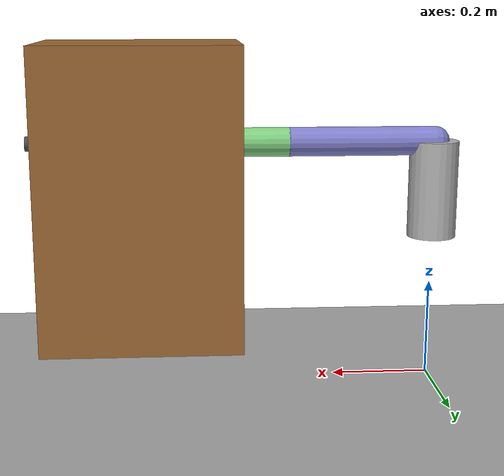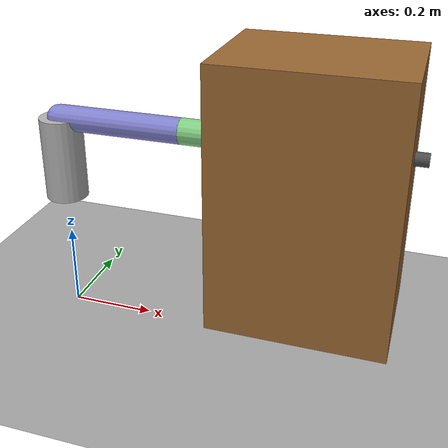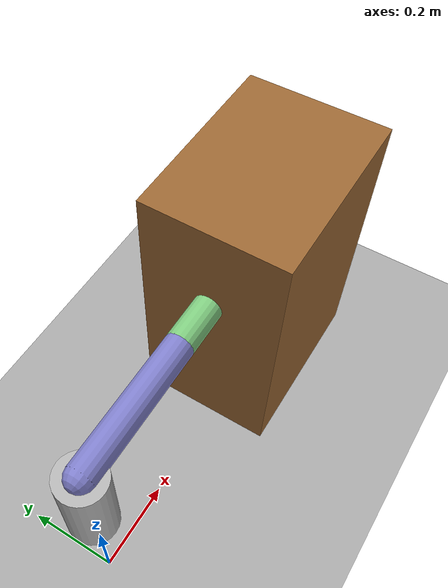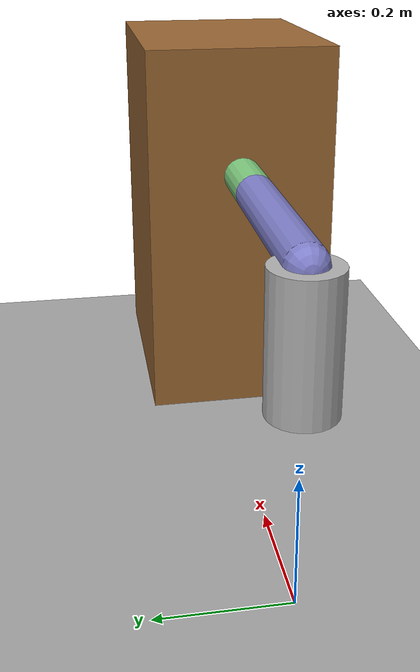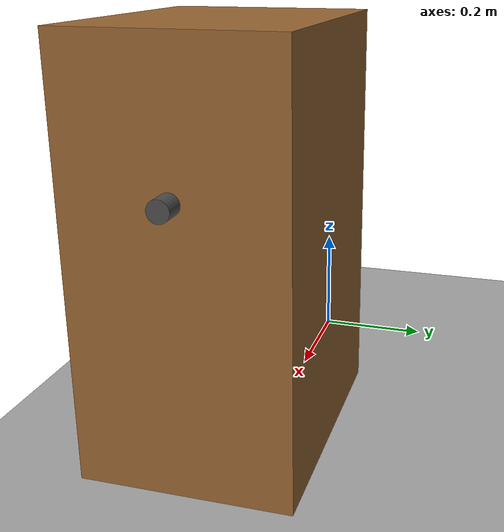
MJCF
<mujoco model="drawer">
  <compiler angle="radian" coordinate="local"/>
  <option timestep="0.002" gravity="0 0 -9.81"/>

  <visual>
    <global offwidth="224" offheight="224"/>
  </visual>

  <asset>
    <texture name="grid" type="2d" builtin="checker" width="512" height="512"/>
    <material name="grid" texture="grid" texrepeat="1 1"/>
  </asset>

  <worldbody>
    <light pos="0 0 1.5" dir="0 0 -1"/>
    <camera name="fixed" pos="0.8 0.8 0.8" xyaxes="-1 1 0 -0.5 -0.5 1"/>
    <geom name="floor" type="plane" size="2 2 .1" material="grid"/>

    <!-- Cabinet -->
    <body name="cabinet" pos="0.6 0 0.4">
      <geom type="box" size="0.2 0.15 0.3" rgba="0.6 0.4 0.2 1"/>

      <!-- Drawer -->
      <body name="drawer" pos="0 0 0.1">
        <joint name="drawer_slide" type="slide" axis="1 0 0" range="0 0.3" damping="5"/>
        <geom type="box" size="0.18 0.13 0.08" rgba="0.8 0.6 0.3 1"/>
        <geom name="handle" type="cylinder" size="0.015 0.05" pos="0.18 0 0" quat="0.707 0 0.707 0" rgba="0.3 0.3 0.3 1"/>
      </body>
    </body>

    <!-- Robot arm -->
    <body name="base" pos="0 0 0.4">
      <geom type="cylinder" size="0.05 0.1" rgba="0.7 0.7 0.7 1"/>
      <joint name="joint0" type="hinge" axis="0 0 1" range="-3.14 3.14" damping="1"/>

      <body name="link1" pos="0 0 0.1">
        <geom type="capsule" fromto="0 0 0 0.3 0 0" size="0.03" rgba="0.5 0.5 0.8 1"/>
        <joint name="joint1" type="hinge" axis="0 1 0" range="-1.57 1.57" damping="1"/>

        <body name="link2" pos="0.3 0 0">
          <geom type="capsule" fromto="0 0 0 0.3 0 0" size="0.03" rgba="0.5 0.8 0.5 1"/>
          <joint name="joint2" type="hinge" axis="0 1 0" range="-1.57 1.57" damping="1"/>

          <body name="ee" pos="0.3 0 0">
            <site name="ee_site" pos="0 0 0" size="0.02"/>
            <geom type="sphere" size="0.04" rgba="0.8 0.2 0.2 1"/>
          </body>
        </body>
      </body>
    </body>
  </worldbody>

  <actuator>
    <position name="act0" joint="joint0" kp="10"/>
    <position name="act1" joint="joint1" kp="10"/>
    <position name="act2" joint="joint2" kp="10"/>
  </actuator>
</mujoco>
